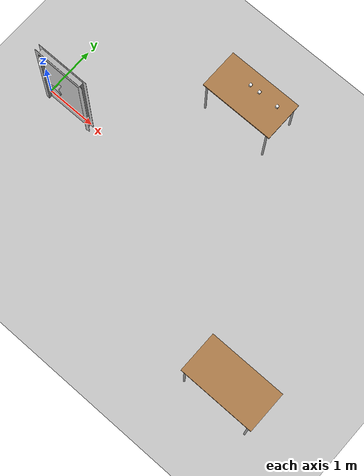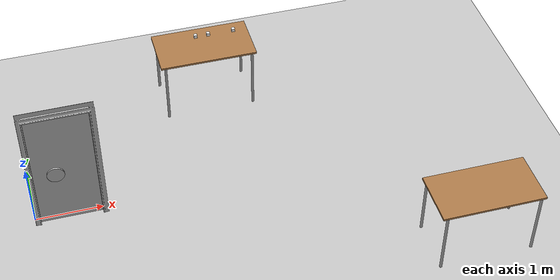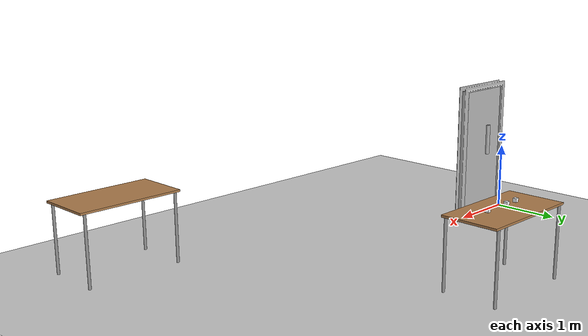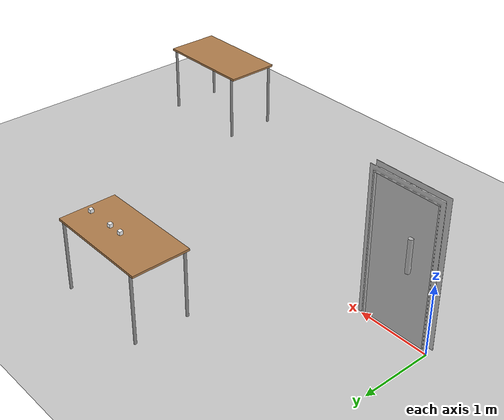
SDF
<sdf version="1.4">
 <world name="tutorial2">
  <include><uri>model://sun</uri></include>
  <include><uri>model://ground_plane</uri></include>
  <include><uri>model://door</uri><pose>0.0 0.0 0 1.57 0 0</pose></include>
  <include><uri>model://table</uri><name>table1</name><pose>3.0 2.0 0 0 0 0</pose></include>
  <include><uri>model://table</uri><name>table2</name><pose>6.0 -2.0 0 0 0 0</pose></include>
  <include><uri>model://wood_cube_5cm</uri><name>cube1</name><pose>2.9 2.1 1.1 0 0 0</pose></include>
  <include><uri>model://wood_cube_5cm</uri><name>cube2</name><pose>3.1 2.1 1.1 0 0 0</pose></include>
  <include><uri>model://wood_cube_5cm</uri><name>cube3</name><pose>3.5 2.1 1.1 0 0 0</pose></include>
 </world>
</sdf>

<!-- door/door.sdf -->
<sdf version="1.4">
    <model name="door">
        <pose>0 0 0 0 0 0</pose>

        <link name="door_frame">
            <inertial>
                <pose>0.525 1 0.05 0 0 0</pose>
                <mass>30.0</mass>
                <inertia>
                    <ixx>1</ixx>
                    <ixy>0.0</ixy>
                    <ixz>0.0</ixz>
                    <iyy>1</iyy>
                    <iyz>0.0</iyz>
                    <izz>1</izz>
                </inertia>
            </inertial>

            <visual name="visual_frame">
                <pose>0 0 0 0 0 0</pose>
                <geometry>
                    <mesh>
                        <uri>model://door/meshes/frame.stl</uri>
                        <!-- TODO:   Find a proper scale for the mesh -->
	                    <scale> 0.1 0.1 0.1 </scale>
                    </mesh>
                </geometry>
            </visual>

            <collision name="collision_frame">
                <pose>0 0 0 0 0 0</pose> <!-- Match visual pose -->
                <geometry>
                    <mesh>
                        <uri>model://door/meshes/frame.stl</uri>
                        <scale>0.1 0.1 0.1</scale>
                    </mesh>
                </geometry>
            </collision>

            <!-- TODO: Create a "collision" entry with the same geometry than the "visual" entry.-->

        </link>

        <link name="door_body">
            <inertial>
                <pose>0.525 1 0.05 0 0 0</pose>
                <mass>1.0</mass>
                <inertia>
                    <ixx>0.083</ixx>
                    <ixy>0.0</ixy>
                    <ixz>0.0</ixz>
                    <iyy>0.083</iyy>
                    <iyz>0.0</iyz>
                    <izz>0.083</izz>
                </inertia>
            </inertial>

            <collision name="collision_door">
                <pose>0.525 0.995 0.05 0 0 0</pose>
                <geometry>
                    <box>
                        <size>0.9 1.99 0.03</size>
                    </box>
                </geometry>
            </collision>

            <visual name="visual_door">
                <pose>0.525 0.995 0.05 0 0 0</pose>
                <geometry>
                    <box>
                        <size>0.9 1.99 0.03</size>
                    </box>
                </geometry>
            </visual>
        </link>

        <link name="door_handle">
            <inertial>
                <pose>0.8 1.0 0.15 3.1416 0 0</pose>
                <mass>1.0</mass>
                <inertia>
                    <ixx>1</ixx>
                    <ixy>0.0</ixy>
                    <ixz>0.0</ixz>
                    <iyy>1</iyy>
                    <iyz>0.0</iyz>
                    <izz>1</izz>
                </inertia>
            </inertial>

            <visual name="visual_handle">

                <!-- TODO:   Find proper xyz and RPY values-->
                <pose>0.4 1.0 0.015 0 0 0</pose>
                <geometry>
                    <mesh>
                        <uri>model://door/meshes/handle.stl</uri>

                        <!-- TODO:   Find a proper scale for the mesh -->
	                    <scale> 0.005 0.005 0.005 </scale>
                    </mesh>
                </geometry>
            </visual>

            <!-- TODO: Create a "collision" entry with the same geometry than the "visual" entry.-->
            <collision name="collision_handle">
                <pose>0.4 1.0 0.015 0 0 0</pose> <!-- same as visual -->
                <geometry>
                    <mesh>
                        <uri>model://door/meshes/handle.stl</uri>
                        <scale>0.005 0.005 0.005</scale>
                    </mesh>
                </geometry>
            </collision>

        </link>

        <!-- TODO: Create a "joint" relation between door_body and door_handle. Define the mandatory elements and coherent limits.-->

        <joint name="door_hinge" type="revolute">
            <parent>door_frame</parent>
            <child>door_body</child>
            <pose>0.075 0 0.065 0 0 0</pose>
            <axis>
                <xyz>0 1 0</xyz>
                <limit>
                    <lower>-1.5708</lower>  <!-- -90 degrees -->
                    <upper>1.5708</upper>   <!-- +90 degrees -->
                </limit>

                <dynamics>
                    <damping>0.1</damping>
                    <friction>0.1</friction>
                </dynamics>

                <!-- TODO: Define coherent limits for this joint. -->

            </axis>
        </joint>

        <joint name="handle_joint" type="revolute">
            <parent>door_body</parent>
            <child>door_handle</child>
            <pose>0.4 1.0 0.015 0 0 0</pose>
            <axis>
                <xyz>0 0 1</xyz>
                <limit>
                    <lower>-0.5</lower>
                    <upper>0.5</upper>
                </limit>
                <dynamics>
                    <damping>0.1</damping>
                    <friction>0.1</friction>
                </dynamics>
            </axis>
        </joint>

        <joint name="world_joint" type="revolute">
            <child>door_frame</child>
            <parent>world</parent>
            <axis>
                <limit>
                    <lower>0</lower>
                    <upper>0</upper>
                </limit>
                <xyz>0 1 0</xyz>
                <dynamics>
                    <damping>1.0</damping>
                </dynamics>
                <use_parent_model_frame>true</use_parent_model_frame>
            </axis>
            <physics>
                <ode>
                    <cfm_damping>1</cfm_damping>
                </ode>
            </physics>
        </joint>

    </model>
</sdf>

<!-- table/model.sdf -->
<sdf version="1.5">
  <model name="table">
    <static>true</static>
    <link name="link">
      <collision name="surface">
        <pose>0 0 1.0 0 0 0</pose>
        <geometry>
          <box>
            <size>1.5 0.8 0.03</size>
          </box>
        </geometry>
        <surface>
          <friction>
            <ode>
              <mu>0.6</mu>
              <mu2>0.6</mu2>
            </ode>
          </friction>
        </surface>
      </collision>
      <visual name="visual1">
        <pose>0 0 1.0 0 0 0</pose>
        <geometry>
          <box>
            <size>1.5 0.8 0.03</size>
          </box>
        </geometry>
        <material>
          <script>
            <uri>model://media/materials/scripts/gazebo.material</uri>
            <name>Gazebo/Wood</name>
          </script>
        </material>
      </visual>
      <collision name="front_left_leg">
        <pose>0.68 0.38 0.5 0 0 0</pose>
        <geometry>
          <cylinder>
            <radius>0.02</radius>
            <length>1.0</length>
          </cylinder>
        </geometry>
      </collision>
      <visual name="front_left_leg">
        <pose>0.68 0.38 0.5 0 0 0</pose>
        <geometry>
          <cylinder>
            <radius>0.02</radius>
            <length>1.0</length>
          </cylinder>
        </geometry>
        <material>
          <script>
            <uri>model://media/materials/scripts/gazebo.material</uri>
            <name>Gazebo/Grey</name>
          </script>
        </material>
      </visual>
      <collision name="front_right_leg">
        <pose>0.68 -0.38 0.5 0 0 0</pose>
        <geometry>
          <cylinder>
            <radius>0.02</radius>
            <length>1.0</length>
          </cylinder>
        </geometry>
      </collision>
      <visual name="front_right_leg">
        <pose>0.68 -0.38 0.5 0 0 0</pose>
        <geometry>
          <cylinder>
            <radius>0.02</radius>
            <length>1.0</length>
          </cylinder>
        </geometry>
        <material>
          <script>
            <uri>model://media/materials/scripts/gazebo.material</uri>
            <name>Gazebo/Grey</name>
          </script>
        </material>
      </visual>
      <collision name="back_right_leg">
        <pose>-0.68 -0.38 0.5 0 0 0</pose>
        <geometry>
          <cylinder>
            <radius>0.02</radius>
            <length>1.0</length>
          </cylinder>
        </geometry>
      </collision>
      <visual name="back_right_leg">
        <pose>-0.68 -0.38 0.5 0 0 0</pose>
        <geometry>
          <cylinder>
            <radius>0.02</radius>
            <length>1.0</length>
          </cylinder>
        </geometry>
        <material>
          <script>
            <uri>model://media/materials/scripts/gazebo.material</uri>
            <name>Gazebo/Grey</name>
          </script>
        </material>
      </visual>
      <collision name="back_left_leg">
        <pose>-0.68 0.38 0.5 0 0 0</pose>
        <geometry>
          <cylinder>
            <radius>0.02</radius>
            <length>1.0</length>
          </cylinder>
        </geometry>
      </collision>
      <visual name="back_left_leg">
        <pose>-0.68 0.38 0.5 0 0 0</pose>
        <geometry>
          <cylinder>
            <radius>0.02</radius>
            <length>1.0</length>
          </cylinder>
        </geometry>
        <material>
          <script>
            <uri>model://media/materials/scripts/gazebo.material</uri>
            <name>Gazebo/Grey</name>
          </script>
        </material>
      </visual>
    </link>
  </model>
</sdf>

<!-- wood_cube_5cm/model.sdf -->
<sdf version="1.5">
  <model name="wood_cube_5cm">
    <link name="link">
      <pose>0 0 0.025 0 0 0</pose>
      <inertial>
        <mass>0.0565</mass>
        <inertia>
          <ixx>2.3541666666666672e-05</ixx>
          <ixy>0</ixy>
          <ixz>0</ixz>
          <iyy>2.3541666666666672e-05</iyy>
          <iyz>0</iyz>
          <izz>2.3541666666666672e-05</izz>
        </inertia>
      </inertial>

      <collision name="collision">
        <geometry>
          <box>
            <size>0.05 0.05 0.05</size>
          </box>
        </geometry>
        <surface>
          <contact>
            <!-- Red Pine coefficients for longitudinal axis of the wood
                 according to:
                 http://www.fpl.fs.fed.us/documnts/fplgtr/fplgtr113/ch04.pdf -->
            <poissons_ratio>0.347</poissons_ratio>
            <elastic_modulus>8.8e+09</elastic_modulus>
            <ode>
              <kp>100000</kp>
              <kd>1</kd>
              <max_vel>1.0</max_vel>
              <min_depth>0.001</min_depth>
            </ode>
          </contact>
          <friction>
            <torsional>
              <coefficient>1.0</coefficient>
              <use_patch_radius>0</use_patch_radius>
              <surface_radius>0.05</surface_radius>
            </torsional>
          </friction>
        </surface>
      </collision>

      <visual name="visual">
        <geometry>
          <box>
            <size>0.05 0.05 0.05</size>
          </box>
        </geometry>
        <material><diffuse>1 1 1 1</diffuse><specular>0.1 0.1 0.1 1</specular></material>
      </visual>

    </link>
  </model>
</sdf>
